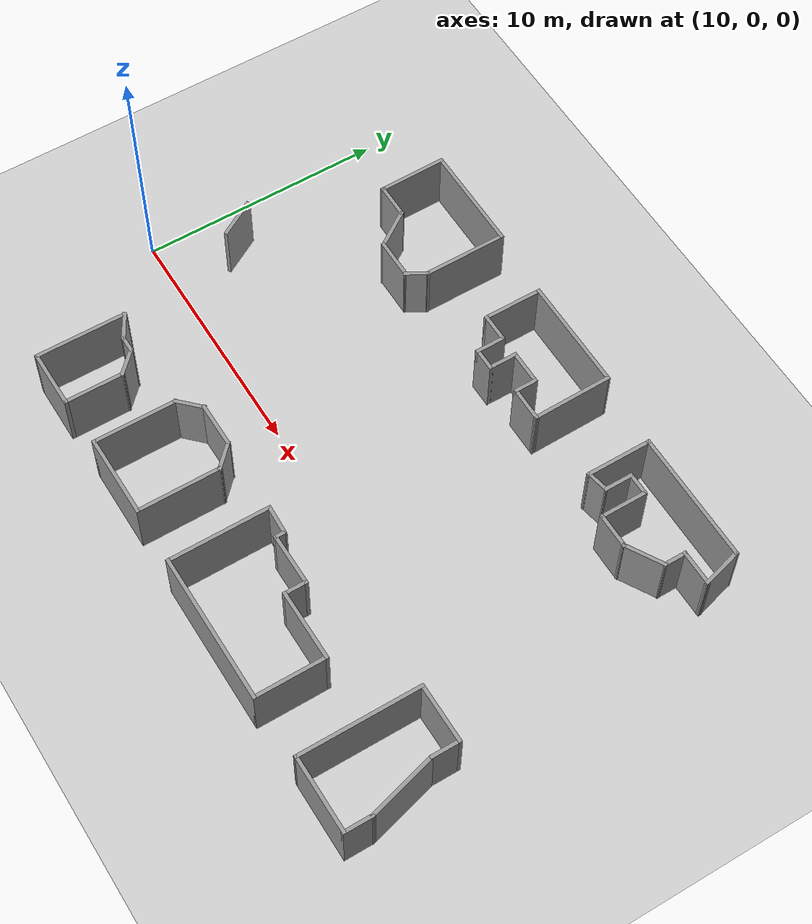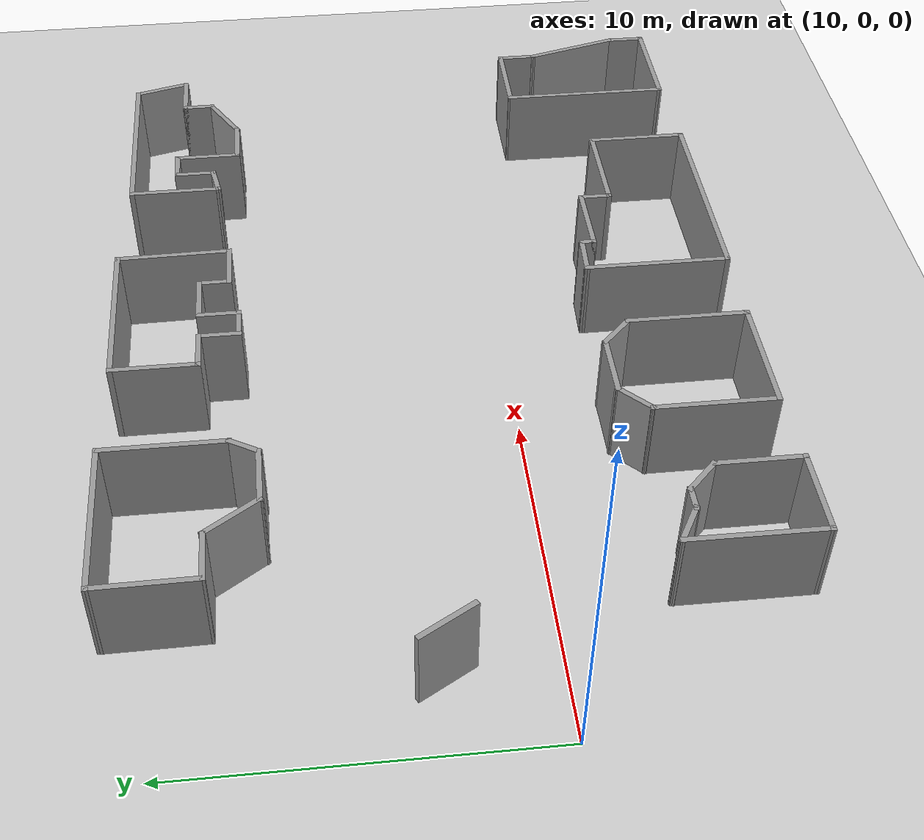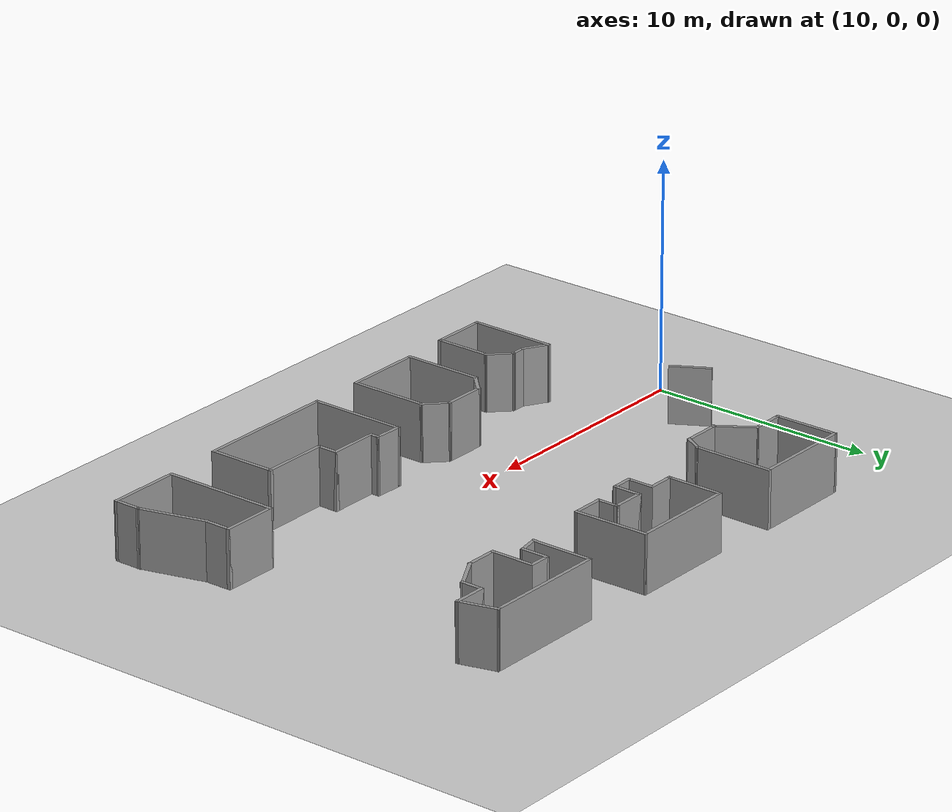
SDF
<sdf version="1.6">
 <world name="default">
  <model name="ground_plane">
   <static>1</static>
   <link name="link">
    <collision name="collision">
     <geometry><plane><normal>0 0 1</normal><size>100 100</size></plane></geometry>
     <surface><friction><ode><mu>100</mu><mu2>50</mu2></ode></friction></surface>
    </collision>
    <visual name="visual">
     <cast_shadows>0</cast_shadows>
     <geometry><plane><normal>0 0 1</normal><size>100 100</size></plane></geometry>
     <material>
      <script><uri>file://media/materials/scripts/gazebo.material</uri><name>Gazebo/Grey</name></script>
     </material>
    </visual>
   </link>
  </model>
  <model name="corridor1">
   <pose>-0.71562 2.39478 0 0 -0 0</pose>
   <link name="Wall_102">
    <collision name="Wall_102_Collision">
     <geometry><box><size>1.25 0.15 2.5</size></box></geometry>
     <pose>0 0 1.25 0 -0 0</pose>
    </collision>
    <visual name="Wall_102_Visual">
     <pose>0 0 1.25 0 -0 0</pose>
     <geometry><box><size>1.25 0.15 2.5</size></box></geometry>
     <material>
      <script><uri>file://media/materials/scripts/gazebo.material</uri><name>Gazebo/Grey</name></script>
      <ambient>1 1 1 1</ambient>
     </material>
     <meta><layer>0</layer></meta>
    </visual>
    <pose>14.903 -5.59291 0 0 0 -0.523599</pose>
   </link>
   <link name="Wall_103">
    <collision name="Wall_103_Collision">
     <geometry><box><size>0.75 0.15 2.5</size></box></geometry>
     <pose>0 0 1.25 0 -0 0</pose>
    </collision>
    <visual name="Wall_103_Visual">
     <pose>0 0 1.25 0 -0 0</pose>
     <geometry><box><size>0.75 0.15 2.5</size></box></geometry>
     <material>
      <script><uri>file://media/materials/scripts/gazebo.material</uri><name>Gazebo/Grey</name></script>
      <ambient>1 1 1 1</ambient>
     </material>
     <meta><layer>0</layer></meta>
    </visual>
    <pose>15.6793 -5.86791 0 0 -0 0</pose>
   </link>
   <link name="Wall_104">
    <collision name="Wall_104_Collision">
     <geometry><box><size>1.25 0.15 2.5</size></box></geometry>
     <pose>0 0 1.25 0 -0 0</pose>
    </collision>
    <visual name="Wall_104_Visual">
     <pose>0 0 1.25 0 -0 0</pose>
     <geometry><box><size>1.25 0.15 2.5</size></box></geometry>
     <material>
      <script><uri>file://media/materials/scripts/gazebo.material</uri><name>Gazebo/Grey</name></script>
      <ambient>1 1 1 1</ambient>
     </material>
     <meta><layer>0</layer></meta>
    </visual>
    <pose>16.3682 -6.25681 0 0 0 -0.785398</pose>
   </link>
   <link name="Wall_105">
    <collision name="Wall_105_Collision">
     <geometry><box><size>2.5 0.15 2.5</size></box></geometry>
     <pose>0 0 1.25 0 -0 0</pose>
    </collision>
    <visual name="Wall_105_Visual">
     <pose>0 0 1.25 0 -0 0</pose>
     <geometry><box><size>2.5 0.15 2.5</size></box></geometry>
     <material>
      <script><uri>file://media/materials/scripts/gazebo.material</uri><name>Gazebo/Grey</name></script>
      <ambient>1 1 1 1</ambient>
     </material>
     <meta><layer>0</layer></meta>
    </visual>
    <pose>16.7571 -7.82072 0 0 0 -1.5708</pose>
   </link>
   <link name="Wall_106">
    <collision name="Wall_106_Collision">
     <geometry><box><size>2.5 0.15 2.5</size></box></geometry>
     <pose>0 0 1.25 0 -0 0</pose>
    </collision>
    <visual name="Wall_106_Visual">
     <pose>0 0 1.25 0 -0 0</pose>
     <geometry><box><size>2.5 0.15 2.5</size></box></geometry>
     <material>
      <script><uri>file://media/materials/scripts/gazebo.material</uri><name>Gazebo/Grey</name></script>
      <ambient>1 1 1 1</ambient>
     </material>
     <meta><layer>0</layer></meta>
    </visual>
    <pose>15.5821 -8.99572 0 0 -0 3.14159</pose>
   </link>
   <link name="Wall_107">
    <collision name="Wall_107_Collision">
     <geometry><box><size>3.82787 0.15 2.5</size></box></geometry>
     <pose>0 0 1.25 0 -0 0</pose>
    </collision>
    <visual name="Wall_107_Visual">
     <pose>0 0 1.25 0 -0 0</pose>
     <geometry><box><size>3.82787 0.15 2.5</size></box></geometry>
     <material>
      <script><uri>file://media/materials/scripts/gazebo.material</uri><name>Gazebo/Grey</name></script>
      <ambient>1 1 1 1</ambient>
     </material>
     <meta><layer>0</layer></meta>
    </visual>
    <pose>14.4169 -7.15681 0 0 -0 1.56548</pose>
   </link>
   <link name="Wall_109">
    <collision name="Wall_109_Collision">
     <geometry><box><size>1.25 0.15 2.5</size></box></geometry>
     <pose>0 0 1.25 0 -0 0</pose>
    </collision>
    <visual name="Wall_109_Visual">
     <pose>0 0 1.25 0 -0 0</pose>
     <geometry><box><size>1.25 0.15 2.5</size></box></geometry>
     <material>
      <script><uri>file://media/materials/scripts/gazebo.material</uri><name>Gazebo/Grey</name></script>
      <ambient>1 1 1 1</ambient>
     </material>
     <meta><layer>0</layer></meta>
    </visual>
    <pose>19.2123 -5.15015 0 0 0 -2.35619</pose>
   </link>
   <link name="Wall_110">
    <collision name="Wall_110_Collision">
     <geometry><box><size>3.5 0.15 2.5</size></box></geometry>
     <pose>0 0 1.25 0 -0 0</pose>
    </collision>
    <visual name="Wall_110_Visual">
     <pose>0 0 1.25 0 -0 0</pose>
     <geometry><box><size>3.5 0.15 2.5</size></box></geometry>
     <material>
      <script><uri>file://media/materials/scripts/gazebo.material</uri><name>Gazebo/Grey</name></script>
      <ambient>1 1 1 1</ambient>
     </material>
     <meta><layer>0</layer></meta>
    </visual>
    <pose>18.8234 -7.21406 0 0 0 -1.5708</pose>
   </link>
   <link name="Wall_111">
    <collision name="Wall_111_Collision">
     <geometry><box><size>3.5 0.15 2.5</size></box></geometry>
     <pose>0 0 1.25 0 -0 0</pose>
    </collision>
    <visual name="Wall_111_Visual">
     <pose>0 0 1.25 0 -0 0</pose>
     <geometry><box><size>3.5 0.15 2.5</size></box></geometry>
     <material>
      <script><uri>file://media/materials/scripts/gazebo.material</uri><name>Gazebo/Grey</name></script>
      <ambient>1 1 1 1</ambient>
     </material>
     <meta><layer>0</layer></meta>
    </visual>
    <pose>20.4984 -8.88906 0 0 -0 0</pose>
   </link>
   <link name="Wall_112">
    <collision name="Wall_112_Collision">
     <geometry><box><size>3.5 0.15 2.5</size></box></geometry>
     <pose>0 0 1.25 0 -0 0</pose>
    </collision>
    <visual name="Wall_112_Visual">
     <pose>0 0 1.25 0 -0 0</pose>
     <geometry><box><size>3.5 0.15 2.5</size></box></geometry>
     <material>
      <script><uri>file://media/materials/scripts/gazebo.material</uri><name>Gazebo/Grey</name></script>
      <ambient>1 1 1 1</ambient>
     </material>
     <meta><layer>0</layer></meta>
    </visual>
    <pose>22.1734 -7.21406 0 0 -0 1.5708</pose>
   </link>
   <link name="Wall_113">
    <collision name="Wall_113_Collision">
     <geometry><box><size>1.25 0.15 2.5</size></box></geometry>
     <pose>0 0 1.25 0 -0 0</pose>
    </collision>
    <visual name="Wall_113_Visual">
     <pose>0 0 1.25 0 -0 0</pose>
     <geometry><box><size>1.25 0.15 2.5</size></box></geometry>
     <material>
      <script><uri>file://media/materials/scripts/gazebo.material</uri><name>Gazebo/Grey</name></script>
      <ambient>1 1 1 1</ambient>
     </material>
     <meta><layer>0</layer></meta>
    </visual>
    <pose>21.7845 -5.15015 0 0 -0 2.35619</pose>
   </link>
   <link name="Wall_114">
    <collision name="Wall_114_Collision">
     <geometry><box><size>1.94436 0.15 2.5</size></box></geometry>
     <pose>0 0 1.25 0 -0 0</pose>
    </collision>
    <visual name="Wall_114_Visual">
     <pose>0 0 1.25 0 -0 0</pose>
     <geometry><box><size>1.94436 0.15 2.5</size></box></geometry>
     <material>
      <script><uri>file://media/materials/scripts/gazebo.material</uri><name>Gazebo/Grey</name></script>
      <ambient>1 1 1 1</ambient>
     </material>
     <meta><layer>0</layer></meta>
    </visual>
    <pose>20.4984 -4.76124 0 0 -0 3.14159</pose>
   </link>
   <link name="Wall_179">
    <collision name="Wall_179_Collision">
     <geometry><box><size>4.5 0.15 2.5</size></box></geometry>
     <pose>0 0 1.25 0 -0 0</pose>
    </collision>
    <visual name="Wall_179_Visual">
     <pose>0 0 1.25 0 -0 0</pose>
     <geometry><box><size>4.5 0.15 2.5</size></box></geometry>
     <material>
      <script><uri>file://media/materials/scripts/gazebo.material</uri><name>Gazebo/Grey</name></script>
      <ambient>1 1 1 1</ambient>
     </material>
     <meta><layer>0</layer></meta>
    </visual>
    <pose>16.6017 8.78209 0 0 -0 0</pose>
   </link>
   <link name="Wall_180">
    <collision name="Wall_180_Collision">
     <geometry><box><size>3.5 0.15 2.5</size></box></geometry>
     <pose>0 0 1.25 0 -0 0</pose>
    </collision>
    <visual name="Wall_180_Visual">
     <pose>0 0 1.25 0 -0 0</pose>
     <geometry><box><size>3.5 0.15 2.5</size></box></geometry>
     <material>
      <script><uri>file://media/materials/scripts/gazebo.material</uri><name>Gazebo/Grey</name></script>
      <ambient>1 1 1 1</ambient>
     </material>
     <meta><layer>0</layer></meta>
    </visual>
    <pose>18.7767 7.1071 0 0 0 -1.5708</pose>
   </link>
   <link name="Wall_181">
    <collision name="Wall_181_Collision">
     <geometry><box><size>1 0.15 2.5</size></box></geometry>
     <pose>0 0 1.25 0 -0 0</pose>
    </collision>
    <visual name="Wall_181_Visual">
     <pose>0 0 1.25 0 -0 0</pose>
     <geometry><box><size>1 0.15 2.5</size></box></geometry>
     <material>
      <script><uri>file://media/materials/scripts/gazebo.material</uri><name>Gazebo/Grey</name></script>
      <ambient>1 1 1 1</ambient>
     </material>
     <meta><layer>0</layer></meta>
    </visual>
    <pose>18.5642 5.06403 0 0 0 -2.0944</pose>
   </link>
   <link name="Wall_182">
    <collision name="Wall_182_Collision">
     <geometry><box><size>1.75 0.15 2.5</size></box></geometry>
     <pose>0 0 1.25 0 -0 0</pose>
    </collision>
    <visual name="Wall_182_Visual">
     <pose>0 0 1.25 0 -0 0</pose>
     <geometry><box><size>1.75 0.15 2.5</size></box></geometry>
     <material>
      <script><uri>file://media/materials/scripts/gazebo.material</uri><name>Gazebo/Grey</name></script>
      <ambient>1 1 1 1</ambient>
     </material>
     <meta><layer>0</layer></meta>
    </visual>
    <pose>17.5517 4.69597 0 0 -0 3.14159</pose>
   </link>
   <link name="Wall_183">
    <collision name="Wall_183_Collision">
     <geometry><box><size>1.82178 0.15 2.5</size></box></geometry>
     <pose>0 0 1.25 0 -0 0</pose>
    </collision>
    <visual name="Wall_183_Visual">
     <pose>0 0 1.25 0 -0 0</pose>
     <geometry><box><size>1.82178 0.15 2.5</size></box></geometry>
     <material>
      <script><uri>file://media/materials/scripts/gazebo.material</uri><name>Gazebo/Grey</name></script>
      <ambient>1 1 1 1</ambient>
     </material>
     <meta><layer>0</layer></meta>
    </visual>
    <pose>16.284 5.38879 0 0 -0 2.16456</pose>
   </link>
   <link name="Wall_184">
    <collision name="Wall_184_Collision">
     <geometry><box><size>1.5 0.15 2.5</size></box></geometry>
     <pose>0 0 1.25 0 -0 0</pose>
    </collision>
    <visual name="Wall_184_Visual">
     <pose>0 0 1.25 0 -0 0</pose>
     <geometry><box><size>1.5 0.15 2.5</size></box></geometry>
     <material>
      <script><uri>file://media/materials/scripts/gazebo.material</uri><name>Gazebo/Grey</name></script>
      <ambient>1 1 1 1</ambient>
     </material>
     <meta><layer>0</layer></meta>
    </visual>
    <pose>15.1263 6.08161 0 0 -0 3.14159</pose>
   </link>
   <link name="Wall_186">
    <collision name="Wall_186_Collision">
     <geometry><box><size>2.85059 0.15 2.5</size></box></geometry>
     <pose>0 0 1.25 0 -0 0</pose>
    </collision>
    <visual name="Wall_186_Visual">
     <pose>0 0 1.25 0 -0 0</pose>
     <geometry><box><size>2.85059 0.15 2.5</size></box></geometry>
     <material>
      <script><uri>file://media/materials/scripts/gazebo.material</uri><name>Gazebo/Grey</name></script>
      <ambient>1 1 1 1</ambient>
     </material>
     <meta><layer>0</layer></meta>
    </visual>
    <pose>14.439 7.43185 0 0 0 -1.56168</pose>
   </link>
   <link name="Wall_188">
    <collision name="Wall_188_Collision">
     <geometry><box><size>2.5 0.15 2.5</size></box></geometry>
     <pose>0 0 1.25 0 -0 0</pose>
    </collision>
    <visual name="Wall_188_Visual">
     <pose>0 0 1.25 0 -0 0</pose>
     <geometry><box><size>2.5 0.15 2.5</size></box></geometry>
     <material>
      <script><uri>file://media/materials/scripts/gazebo.material</uri><name>Gazebo/Grey</name></script>
      <ambient>1 1 1 1</ambient>
     </material>
     <meta><layer>0</layer></meta>
    </visual>
    <pose>21.6645 7.41156 0 0 0 -1.5708</pose>
   </link>
   <link name="Wall_189">
    <collision name="Wall_189_Collision">
     <geometry><box><size>1.25 0.15 2.5</size></box></geometry>
     <pose>0 0 1.25 0 -0 0</pose>
    </collision>
    <visual name="Wall_189_Visual">
     <pose>0 0 1.25 0 -0 0</pose>
     <geometry><box><size>1.25 0.15 2.5</size></box></geometry>
     <material>
      <script><uri>file://media/materials/scripts/gazebo.material</uri><name>Gazebo/Grey</name></script>
      <ambient>1 1 1 1</ambient>
     </material>
     <meta><layer>0</layer></meta>
    </visual>
    <pose>22.2145 6.23656 0 0 -0 0</pose>
   </link>
   <link name="Wall_190">
    <collision name="Wall_190_Collision">
     <geometry><box><size>1.25 0.15 2.5</size></box></geometry>
     <pose>0 0 1.25 0 -0 0</pose>
    </collision>
    <visual name="Wall_190_Visual">
     <pose>0 0 1.25 0 -0 0</pose>
     <geometry><box><size>1.25 0.15 2.5</size></box></geometry>
     <material>
      <script><uri>file://media/materials/scripts/gazebo.material</uri><name>Gazebo/Grey</name></script>
      <ambient>1 1 1 1</ambient>
     </material>
     <meta><layer>0</layer></meta>
    </visual>
    <pose>22.7645 5.68656 0 0 0 -1.5708</pose>
   </link>
   <link name="Wall_191">
    <collision name="Wall_191_Collision">
     <geometry><box><size>1 0.15 2.5</size></box></geometry>
     <pose>0 0 1.25 0 -0 0</pose>
    </collision>
    <visual name="Wall_191_Visual">
     <pose>0 0 1.25 0 -0 0</pose>
     <geometry><box><size>1 0.15 2.5</size></box></geometry>
     <material>
      <script><uri>file://media/materials/scripts/gazebo.material</uri><name>Gazebo/Grey</name></script>
      <ambient>1 1 1 1</ambient>
     </material>
     <meta><layer>0</layer></meta>
    </visual>
    <pose>23.1895 5.13656 0 0 -0 0</pose>
   </link>
   <link name="Wall_192">
    <collision name="Wall_192_Collision">
     <geometry><box><size>1.25 0.15 2.5</size></box></geometry>
     <pose>0 0 1.25 0 -0 0</pose>
    </collision>
    <visual name="Wall_192_Visual">
     <pose>0 0 1.25 0 -0 0</pose>
     <geometry><box><size>1.25 0.15 2.5</size></box></geometry>
     <material>
      <script><uri>file://media/materials/scripts/gazebo.material</uri><name>Gazebo/Grey</name></script>
      <ambient>1 1 1 1</ambient>
     </material>
     <meta><layer>0</layer></meta>
    </visual>
    <pose>23.6145 5.68656 0 0 -0 1.5708</pose>
   </link>
   <link name="Wall_193">
    <collision name="Wall_193_Collision">
     <geometry><box><size>1.5 0.15 2.5</size></box></geometry>
     <pose>0 0 1.25 0 -0 0</pose>
    </collision>
    <visual name="Wall_193_Visual">
     <pose>0 0 1.25 0 -0 0</pose>
     <geometry><box><size>1.5 0.15 2.5</size></box></geometry>
     <material>
      <script><uri>file://media/materials/scripts/gazebo.material</uri><name>Gazebo/Grey</name></script>
      <ambient>1 1 1 1</ambient>
     </material>
     <meta><layer>0</layer></meta>
    </visual>
    <pose>24.2895 6.23656 0 0 -0 0</pose>
   </link>
   <link name="Wall_194">
    <collision name="Wall_194_Collision">
     <geometry><box><size>1 0.15 2.5</size></box></geometry>
     <pose>0 0 1.25 0 -0 0</pose>
    </collision>
    <visual name="Wall_194_Visual">
     <pose>0 0 1.25 0 -0 0</pose>
     <geometry><box><size>1 0.15 2.5</size></box></geometry>
     <material>
      <script><uri>file://media/materials/scripts/gazebo.material</uri><name>Gazebo/Grey</name></script>
      <ambient>1 1 1 1</ambient>
     </material>
     <meta><layer>0</layer></meta>
    </visual>
    <pose>24.9645 5.81156 0 0 0 -1.5708</pose>
   </link>
   <link name="Wall_197">
    <collision name="Wall_197_Collision">
     <geometry><box><size>1.5 0.15 2.5</size></box></geometry>
     <pose>0 0 1.25 0 -0 0</pose>
    </collision>
    <visual name="Wall_197_Visual">
     <pose>0 0 1.25 0 -0 0</pose>
     <geometry><box><size>1.5 0.15 2.5</size></box></geometry>
     <material>
      <script><uri>file://media/materials/scripts/gazebo.material</uri><name>Gazebo/Grey</name></script>
      <ambient>1 1 1 1</ambient>
     </material>
     <meta><layer>0</layer></meta>
    </visual>
    <pose>25.6395 5.38656 0 0 -0 0</pose>
   </link>
   <link name="Wall_198">
    <collision name="Wall_198_Collision">
     <geometry><box><size>3.35039 0.15 2.5</size></box></geometry>
     <pose>0 0 1.25 0 -0 0</pose>
    </collision>
    <visual name="Wall_198_Visual">
     <pose>0 0 1.25 0 -0 0</pose>
     <geometry><box><size>3.35039 0.15 2.5</size></box></geometry>
     <material>
      <script><uri>file://media/materials/scripts/gazebo.material</uri><name>Gazebo/Grey</name></script>
      <ambient>1 1 1 1</ambient>
     </material>
     <meta><layer>0</layer></meta>
    </visual>
    <pose>26.2895 6.98656 0 0 -0 1.58642</pose>
   </link>
   <link name="Wall_199">
    <collision name="Wall_199_Collision">
     <geometry><box><size>4.75 0.15 2.5</size></box></geometry>
     <pose>0 0 1.25 0 -0 0</pose>
    </collision>
    <visual name="Wall_199_Visual">
     <pose>0 0 1.25 0 -0 0</pose>
     <geometry><box><size>4.75 0.15 2.5</size></box></geometry>
     <material>
      <script><uri>file://media/materials/scripts/gazebo.material</uri><name>Gazebo/Grey</name></script>
      <ambient>1 1 1 1</ambient>
     </material>
     <meta><layer>0</layer></meta>
    </visual>
    <pose>23.9645 8.58656 0 0 -0 3.14159</pose>
   </link>
   <link name="Wall_231">
    <collision name="Wall_231_Collision">
     <geometry><box><size>6.25 0.15 2.5</size></box></geometry>
     <pose>0 0 1.25 0 -0 0</pose>
    </collision>
    <visual name="Wall_231_Visual">
     <pose>0 0 1.25 0 -0 0</pose>
     <geometry><box><size>6.25 0.15 2.5</size></box></geometry>
     <material>
      <script><uri>file://media/materials/scripts/gazebo.material</uri><name>Gazebo/Grey</name></script>
      <ambient>1 1 1 1</ambient>
     </material>
     <meta><layer>0</layer></meta>
    </visual>
    <pose>27.5558 -8.91638 0 0 -0 0</pose>
   </link>
   <link name="Wall_232">
    <collision name="Wall_232_Collision">
     <geometry><box><size>3 0.15 2.5</size></box></geometry>
     <pose>0 0 1.25 0 -0 0</pose>
    </collision>
    <visual name="Wall_232_Visual">
     <pose>0 0 1.25 0 -0 0</pose>
     <geometry><box><size>3 0.15 2.5</size></box></geometry>
     <material>
      <script><uri>file://media/materials/scripts/gazebo.material</uri><name>Gazebo/Grey</name></script>
      <ambient>1 1 1 1</ambient>
     </material>
     <meta><layer>0</layer></meta>
    </visual>
    <pose>30.6058 -7.49138 0 0 -0 1.5708</pose>
   </link>
   <link name="Wall_233">
    <collision name="Wall_233_Collision">
     <geometry><box><size>3 0.15 2.5</size></box></geometry>
     <pose>0 0 1.25 0 -0 0</pose>
    </collision>
    <visual name="Wall_233_Visual">
     <pose>0 0 1.25 0 -0 0</pose>
     <geometry><box><size>3 0.15 2.5</size></box></geometry>
     <material>
      <script><uri>file://media/materials/scripts/gazebo.material</uri><name>Gazebo/Grey</name></script>
      <ambient>1 1 1 1</ambient>
     </material>
     <meta><layer>0</layer></meta>
    </visual>
    <pose>29.1808 -6.06638 0 0 -0 3.14159</pose>
   </link>
   <link name="Wall_234">
    <collision name="Wall_234_Collision">
     <geometry><box><size>1 0.15 2.5</size></box></geometry>
     <pose>0 0 1.25 0 -0 0</pose>
    </collision>
    <visual name="Wall_234_Visual">
     <pose>0 0 1.25 0 -0 0</pose>
     <geometry><box><size>1 0.15 2.5</size></box></geometry>
     <material>
      <script><uri>file://media/materials/scripts/gazebo.material</uri><name>Gazebo/Grey</name></script>
      <ambient>1 1 1 1</ambient>
     </material>
     <meta><layer>0</layer></meta>
    </visual>
    <pose>27.7558 -5.64138 0 0 -0 1.5708</pose>
   </link>
   <link name="Wall_235">
    <collision name="Wall_235_Collision">
     <geometry><box><size>2.25 0.15 2.5</size></box></geometry>
     <pose>0 0 1.25 0 -0 0</pose>
    </collision>
    <visual name="Wall_235_Visual">
     <pose>0 0 1.25 0 -0 0</pose>
     <geometry><box><size>2.25 0.15 2.5</size></box></geometry>
     <material>
      <script><uri>file://media/materials/scripts/gazebo.material</uri><name>Gazebo/Grey</name></script>
      <ambient>1 1 1 1</ambient>
     </material>
     <meta><layer>0</layer></meta>
    </visual>
    <pose>26.7058 -5.21638 0 0 -0 3.14159</pose>
   </link>
   <link name="Wall_236">
    <collision name="Wall_236_Collision">
     <geometry><box><size>0.5 0.15 2.5</size></box></geometry>
     <pose>0 0 1.25 0 -0 0</pose>
    </collision>
    <visual name="Wall_236_Visual">
     <pose>0 0 1.25 0 -0 0</pose>
     <geometry><box><size>0.5 0.15 2.5</size></box></geometry>
     <material>
      <script><uri>file://media/materials/scripts/gazebo.material</uri><name>Gazebo/Grey</name></script>
      <ambient>1 1 1 1</ambient>
     </material>
     <meta><layer>0</layer></meta>
    </visual>
    <pose>25.6558 -5.04138 0 0 -0 1.5708</pose>
   </link>
   <link name="Wall_242">
    <collision name="Wall_242_Collision">
     <geometry><box><size>4.25 0.15 2.5</size></box></geometry>
     <pose>0 0 1.25 0 -0 0</pose>
    </collision>
    <visual name="Wall_242_Visual">
     <pose>0 0 1.25 0 -0 0</pose>
     <geometry><box><size>4.25 0.15 2.5</size></box></geometry>
     <material>
      <script><uri>file://media/materials/scripts/gazebo.material</uri><name>Gazebo/Grey</name></script>
      <ambient>1 1 1 1</ambient>
     </material>
     <meta><layer>0</layer></meta>
    </visual>
    <pose>24.5058 -6.86638 0 0 -0 1.5708</pose>
   </link>
   <link name="Wall_244">
    <collision name="Wall_244_Collision">
     <geometry><box><size>1.30109 0.15 2.5</size></box></geometry>
     <pose>0 0 1.25 0 -0 0</pose>
    </collision>
    <visual name="Wall_244_Visual">
     <pose>0 0 1.25 0 -0 0</pose>
     <geometry><box><size>1.30109 0.15 2.5</size></box></geometry>
     <material>
      <script><uri>file://media/materials/scripts/gazebo.material</uri><name>Gazebo/Grey</name></script>
      <ambient>1 1 1 1</ambient>
     </material>
     <meta><layer>0</layer></meta>
    </visual>
    <pose>25.0808 -4.84138 0 0 -0 3.09814</pose>
   </link>
   <link name="Wall_247">
    <collision name="Wall_247_Collision">
     <geometry><box><size>1.25 0.15 2.5</size></box></geometry>
     <pose>0 0 1.25 0 -0 0</pose>
    </collision>
    <visual name="Wall_247_Visual">
     <pose>0 0 1.25 0 -0 0</pose>
     <geometry><box><size>1.25 0.15 2.5</size></box></geometry>
     <material>
      <script><uri>file://media/materials/scripts/gazebo.material</uri><name>Gazebo/Grey</name></script>
      <ambient>1 1 1 1</ambient>
     </material>
     <meta><layer>0</layer></meta>
    </visual>
    <pose>30.1321 6.39373 0 0 -0 1.5708</pose>
   </link>
   <link name="Wall_248">
    <collision name="Wall_248_Collision">
     <geometry><box><size>1 0.15 2.5</size></box></geometry>
     <pose>0 0 1.25 0 -0 0</pose>
    </collision>
    <visual name="Wall_248_Visual">
     <pose>0 0 1.25 0 -0 0</pose>
     <geometry><box><size>1 0.15 2.5</size></box></geometry>
     <material>
      <script><uri>file://media/materials/scripts/gazebo.material</uri><name>Gazebo/Grey</name></script>
      <ambient>1 1 1 1</ambient>
     </material>
     <meta><layer>0</layer></meta>
    </visual>
    <pose>30.5571 6.94373 0 0 -0 0</pose>
   </link>
   <link name="Wall_249">
    <collision name="Wall_249_Collision">
     <geometry><box><size>2 0.15 2.5</size></box></geometry>
     <pose>0 0 1.25 0 -0 0</pose>
    </collision>
    <visual name="Wall_249_Visual">
     <pose>0 0 1.25 0 -0 0</pose>
     <geometry><box><size>2 0.15 2.5</size></box></geometry>
     <material>
      <script><uri>file://media/materials/scripts/gazebo.material</uri><name>Gazebo/Grey</name></script>
      <ambient>1 1 1 1</ambient>
     </material>
     <meta><layer>0</layer></meta>
    </visual>
    <pose>30.9821 6.01873 0 0 0 -1.5708</pose>
   </link>
   <link name="Wall_250">
    <collision name="Wall_250_Collision">
     <geometry><box><size>1.5 0.15 2.5</size></box></geometry>
     <pose>0 0 1.25 0 -0 0</pose>
    </collision>
    <visual name="Wall_250_Visual">
     <pose>0 0 1.25 0 -0 0</pose>
     <geometry><box><size>1.5 0.15 2.5</size></box></geometry>
     <material>
      <script><uri>file://media/materials/scripts/gazebo.material</uri><name>Gazebo/Grey</name></script>
      <ambient>1 1 1 1</ambient>
     </material>
     <meta><layer>0</layer></meta>
    </visual>
    <pose>31.6571 5.09373 0 0 -0 0</pose>
   </link>
   <link name="Wall_251">
    <collision name="Wall_251_Collision">
     <geometry><box><size>1.75 0.15 2.5</size></box></geometry>
     <pose>0 0 1.25 0 -0 0</pose>
    </collision>
    <visual name="Wall_251_Visual">
     <pose>0 0 1.25 0 -0 0</pose>
     <geometry><box><size>1.75 0.15 2.5</size></box></geometry>
     <material>
      <script><uri>file://media/materials/scripts/gazebo.material</uri><name>Gazebo/Grey</name></script>
      <ambient>1 1 1 1</ambient>
     </material>
     <meta><layer>0</layer></meta>
    </visual>
    <pose>33.0249 5.49373 0 0 -0 0.523599</pose>
   </link>
   <link name="Wall_252">
    <collision name="Wall_252_Collision">
     <geometry><box><size>1 0.15 2.5</size></box></geometry>
     <pose>0 0 1.25 0 -0 0</pose>
    </collision>
    <visual name="Wall_252_Visual">
     <pose>0 0 1.25 0 -0 0</pose>
     <geometry><box><size>1 0.15 2.5</size></box></geometry>
     <material>
      <script><uri>file://media/materials/scripts/gazebo.material</uri><name>Gazebo/Grey</name></script>
      <ambient>1 1 1 1</ambient>
     </material>
     <meta><layer>0</layer></meta>
    </visual>
    <pose>33.7177 6.31873 0 0 -0 1.5708</pose>
   </link>
   <link name="Wall_253">
    <collision name="Wall_253_Collision">
     <geometry><box><size>1.5 0.15 2.5</size></box></geometry>
     <pose>0 0 1.25 0 -0 0</pose>
    </collision>
    <visual name="Wall_253_Visual">
     <pose>0 0 1.25 0 -0 0</pose>
     <geometry><box><size>1.5 0.15 2.5</size></box></geometry>
     <material>
      <script><uri>file://media/materials/scripts/gazebo.material</uri><name>Gazebo/Grey</name></script>
      <ambient>1 1 1 1</ambient>
     </material>
     <meta><layer>0</layer></meta>
    </visual>
    <pose>34.3927 6.74373 0 0 -0 0</pose>
   </link>
   <link name="Wall_254">
    <collision name="Wall_254_Collision">
     <geometry><box><size>1.75 0.15 2.5</size></box></geometry>
     <pose>0 0 1.25 0 -0 0</pose>
    </collision>
    <visual name="Wall_254_Visual">
     <pose>0 0 1.25 0 -0 0</pose>
     <geometry><box><size>1.75 0.15 2.5</size></box></geometry>
     <material>
      <script><uri>file://media/materials/scripts/gazebo.material</uri><name>Gazebo/Grey</name></script>
      <ambient>1 1 1 1</ambient>
     </material>
     <meta><layer>0</layer></meta>
    </visual>
    <pose>34.8607 7.51647 0 0 -0 1.8326</pose>
   </link>
   <link name="Wall_255">
    <collision name="Wall_255_Collision">
     <geometry><box><size>5.5 0.15 2.5</size></box></geometry>
     <pose>0 0 1.25 0 -0 0</pose>
    </collision>
    <visual name="Wall_255_Visual">
     <pose>0 0 1.25 0 -0 0</pose>
     <geometry><box><size>5.5 0.15 2.5</size></box></geometry>
     <material>
      <script><uri>file://media/materials/scripts/gazebo.material</uri><name>Gazebo/Grey</name></script>
      <ambient>1 1 1 1</ambient>
     </material>
     <meta><layer>0</layer></meta>
    </visual>
    <pose>31.9786 8.28922 0 0 -0 3.14159</pose>
   </link>
   <link name="Wall_256">
    <collision name="Wall_256_Collision">
     <geometry><box><size>2.75 0.15 2.5</size></box></geometry>
     <pose>0 0 1.25 0 -0 0</pose>
    </collision>
    <visual name="Wall_256_Visual">
     <pose>0 0 1.25 0 -0 0</pose>
     <geometry><box><size>2.75 0.15 2.5</size></box></geometry>
     <material>
      <script><uri>file://media/materials/scripts/gazebo.material</uri><name>Gazebo/Grey</name></script>
      <ambient>1 1 1 1</ambient>
     </material>
     <meta><layer>0</layer></meta>
    </visual>
    <pose>29.3036 6.98921 0 0 0 -1.5708</pose>
   </link>
   <link name="Wall_258">
    <collision name="Wall_258_Collision">
     <geometry><box><size>0.992756 0.15 2.5</size></box></geometry>
     <pose>0 0 1.25 0 -0 0</pose>
    </collision>
    <visual name="Wall_258_Visual">
     <pose>0 0 1.25 0 -0 0</pose>
     <geometry><box><size>0.992756 0.15 2.5</size></box></geometry>
     <material>
      <script><uri>file://media/materials/scripts/gazebo.material</uri><name>Gazebo/Grey</name></script>
      <ambient>1 1 1 1</ambient>
     </material>
     <meta><layer>0</layer></meta>
    </visual>
    <pose>29.7179 5.76647 0 0 -0 0.184392</pose>
   </link>
   <link name="Wall_262">
    <collision name="Wall_262_Collision">
     <geometry><box><size>3.25 0.15 2.5</size></box></geometry>
     <pose>0 0 1.25 0 -0 0</pose>
    </collision>
    <visual name="Wall_262_Visual">
     <pose>0 0 1.25 0 -0 0</pose>
     <geometry><box><size>3.25 0.15 2.5</size></box></geometry>
     <material>
      <script><uri>file://media/materials/scripts/gazebo.material</uri><name>Gazebo/Grey</name></script>
      <ambient>1 1 1 1</ambient>
     </material>
     <meta><layer>0</layer></meta>
    </visual>
    <pose>34.754 -8.78291 0 0 -0 0</pose>
   </link>
   <link name="Wall_263">
    <collision name="Wall_263_Collision">
     <geometry><box><size>1.25 0.15 2.5</size></box></geometry>
     <pose>0 0 1.25 0 -0 0</pose>
    </collision>
    <visual name="Wall_263_Visual">
     <pose>0 0 1.25 0 -0 0</pose>
     <geometry><box><size>1.25 0.15 2.5</size></box></geometry>
     <material>
      <script><uri>file://media/materials/scripts/gazebo.material</uri><name>Gazebo/Grey</name></script>
      <ambient>1 1 1 1</ambient>
     </material>
     <meta><layer>0</layer></meta>
    </visual>
    <pose>36.304 -8.23291 0 0 -0 1.5708</pose>
   </link>
   <link name="Wall_269">
    <collision name="Wall_269_Collision">
     <geometry><box><size>3 0.15 2.5</size></box></geometry>
     <pose>0 0 1.25 0 -0 0</pose>
    </collision>
    <visual name="Wall_269_Visual">
     <pose>0 0 1.25 0 -0 0</pose>
     <geometry><box><size>3 0.15 2.5</size></box></geometry>
     <material>
      <script><uri>file://media/materials/scripts/gazebo.material</uri><name>Gazebo/Grey</name></script>
      <ambient>1 1 1 1</ambient>
     </material>
     <meta><layer>0</layer></meta>
    </visual>
    <pose>35.9352 -6.30647 0 0 -0 1.8326</pose>
   </link>
   <link name="Wall_270">
    <collision name="Wall_270_Collision">
     <geometry><box><size>1.25 0.15 2.5</size></box></geometry>
     <pose>0 0 1.25 0 -0 0</pose>
    </collision>
    <visual name="Wall_270_Visual">
     <pose>0 0 1.25 0 -0 0</pose>
     <geometry><box><size>1.25 0.15 2.5</size></box></geometry>
     <material>
      <script><uri>file://media/materials/scripts/gazebo.material</uri><name>Gazebo/Grey</name></script>
      <ambient>1 1 1 1</ambient>
     </material>
     <meta><layer>0</layer></meta>
    </visual>
    <pose>35.5664 -4.38002 0 0 -0 1.5708</pose>
   </link>
   <link name="Wall_271">
    <collision name="Wall_271_Collision">
     <geometry><box><size>2.5 0.15 2.5</size></box></geometry>
     <pose>0 0 1.25 0 -0 0</pose>
    </collision>
    <visual name="Wall_271_Visual">
     <pose>0 0 1.25 0 -0 0</pose>
     <geometry><box><size>2.5 0.15 2.5</size></box></geometry>
     <material>
      <script><uri>file://media/materials/scripts/gazebo.material</uri><name>Gazebo/Grey</name></script>
      <ambient>1 1 1 1</ambient>
     </material>
     <meta><layer>0</layer></meta>
    </visual>
    <pose>34.3914 -3.83002 0 0 -0 3.14159</pose>
   </link>
   <link name="Wall_273">
    <collision name="Wall_273_Collision">
     <geometry><box><size>5.1029 0.15 2.5</size></box></geometry>
     <pose>0 0 1.25 0 -0 0</pose>
    </collision>
    <visual name="Wall_273_Visual">
     <pose>0 0 1.25 0 -0 0</pose>
     <geometry><box><size>5.1029 0.15 2.5</size></box></geometry>
     <material>
      <script><uri>file://media/materials/scripts/gazebo.material</uri><name>Gazebo/Grey</name></script>
      <ambient>1 1 1 1</ambient>
     </material>
     <meta><layer>0</layer></meta>
    </visual>
    <pose>33.2102 -6.30647 0 0 0 -1.57329</pose>
   </link>
   <link name="Wall_284">
    <collision name="Wall_284_Collision">
     <geometry><box><size>1.75 0.15 2.5</size></box></geometry>
     <pose>0 0 1.25 0 -0 0</pose>
    </collision>
    <visual name="Wall_284_Visual">
     <pose>0 0 1.25 0 -0 0</pose>
     <geometry><box><size>1.75 0.15 2.5</size></box></geometry>
     <material>
      <script><uri>file://media/materials/scripts/gazebo.material</uri><name>Gazebo/Grey</name></script>
      <ambient>1 1 1 1</ambient>
     </material>
     <meta><layer>0</layer></meta>
    </visual>
    <pose>12.6965 0.517892 0 0 0 -1.0472</pose>
   </link>
   <static>1</static>
  </model>
 </world>
</sdf>
